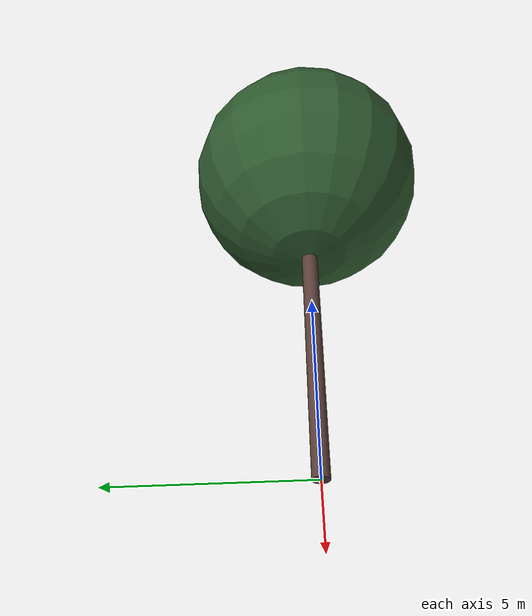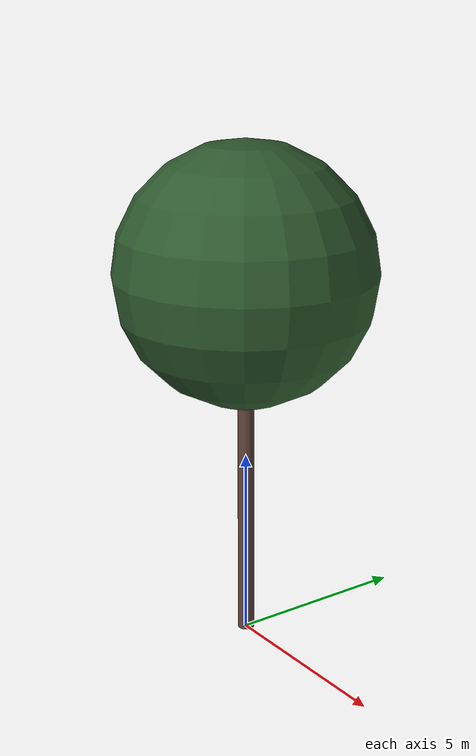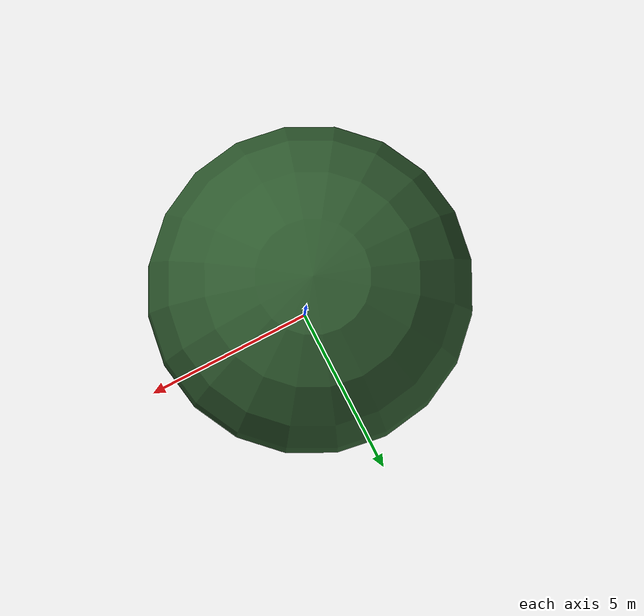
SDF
<?xml version="1.0" ?>
<sdf version="1.10">
  <model name="pin_parasol_06">
    <static>true</static>

    <!-- Tronc -->
    <link name="trunk">
      <pose>0 0 4.409959953677038 0 0 0</pose>
      <visual name="trunk_visual">
        <geometry>
          <cylinder>
            <radius>0.21756789537635624</radius>
            <length>8.819919907354077</length>
          </cylinder>
        </geometry>
        <material>
          <ambient>0.36 0.25 0.22 1</ambient>
          <diffuse>0.36 0.25 0.22 1</diffuse>
          <specular>0.1 0.1 0.1 1</specular>
        </material>
      </visual>
      <collision name="trunk_collision">
        <geometry>
          <cylinder>
            <radius>0.21756789537635624</radius>
            <length>8.819919907354077</length>
          </cylinder>
        </geometry>
      </collision>
    </link>

    <!-- Feuillage -->
    <link name="crown">
      <pose>0 0 9.833127450953132 0 0 0</pose>
      <visual name="crown_visual">
        <geometry>
          <sphere>
              <radius>3.3773584786635187</radius>
            </sphere>
        </geometry>
        <material>
          <ambient>0.18 0.35 0.18 1</ambient>
          <diffuse>0.18 0.35 0.18 1</diffuse>
          <specular>0.1 0.1 0.1 1</specular>
        </material>
      </visual>
      <collision name="crown_collision">
        <geometry>
          <sphere>
            <radius>2.7018867829308153</radius>
          </sphere>
        </geometry>
      </collision>
    </link>

    <!-- Joint tronc-feuillage -->
    <joint name="trunk_crown_joint" type="fixed">
      <parent>trunk</parent>
      <child>crown</child>
    </joint>

  </model>
</sdf>
